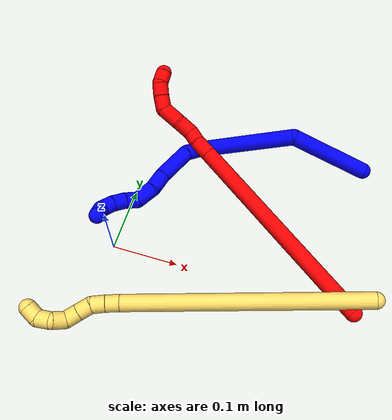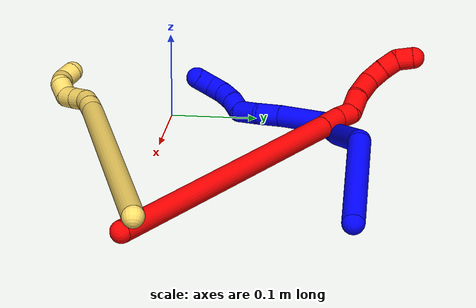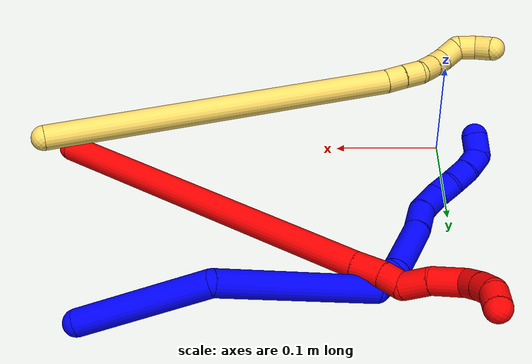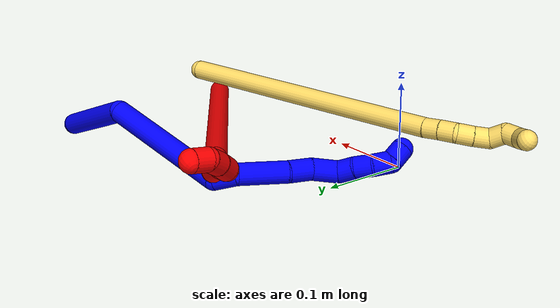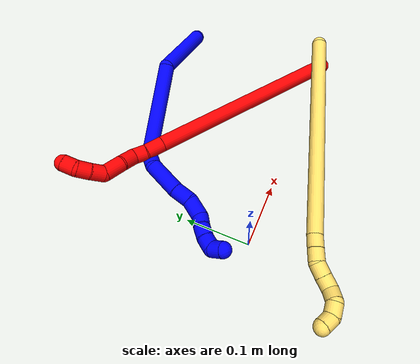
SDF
<sdf version="1.7">
 <world name="default">
  <model name="1">
   <static>0</static>
   <link name="1">
    <collision name="collision-cylinder-e_1_1_4">
     <pose>-0.056295 -0.003179 -0.028383 3.03003 -1.1013 -2.96021</pose>
     <geometry><cylinder><radius>0.0125</radius><length>0.12625</length></cylinder></geometry>
     <surface>
      <friction><ode><mu>1.16</mu><mu2>1.16</mu2><slip1>0</slip1><slip2>0</slip2></ode></friction>
      <contact><ode><kp>1e+06</kp><kd>1</kd><max_vel>0</max_vel><min_depth>0.001</min_depth></ode></contact>
     </surface>
    </collision>
    <visual name="visual-cylinder-e_1_1_4">
     <pose>-0.056295 -0.003179 -0.028383 3.03003 -1.1013 -2.96021</pose>
     <geometry><cylinder><radius>0.0125</radius><length>0.12625</length></cylinder></geometry>
     <material><ambient>0 0 1 1</ambient></material>
    </visual>
    <collision name="collision-cylinder-e_2_4_5">
     <pose>-0.146343 0.017499 -0.121267 -2.78732 -0.456263 1.82794</pose>
     <geometry><cylinder><radius>0.0125</radius><length>0.153219</length></cylinder></geometry>
     <surface>
      <friction><ode><mu>1.16</mu><mu2>1.16</mu2><slip1>0</slip1><slip2>0</slip2></ode></friction>
      <contact><ode><kp>1e+06</kp><kd>1</kd><max_vel>0</max_vel><min_depth>0.001</min_depth></ode></contact>
     </surface>
    </collision>
    <visual name="visual-cylinder-e_2_4_5">
     <pose>-0.146343 0.017499 -0.121267 -2.78732 -0.456263 1.82794</pose>
     <geometry><cylinder><radius>0.0125</radius><length>0.153219</length></cylinder></geometry>
     <material><ambient>0 0 1 1</ambient></material>
    </visual>
    <collision name="collision-cylinder-e_3_5_6">
     <pose>-0.185568 0.035415 -0.196338 2.62947 -0.423912 -1.37595</pose>
     <geometry><cylinder><radius>0.0125</radius><length>0.026604</length></cylinder></geometry>
     <surface>
      <friction><ode><mu>1.16</mu><mu2>1.16</mu2><slip1>0</slip1><slip2>0</slip2></ode></friction>
      <contact><ode><kp>1e+06</kp><kd>1</kd><max_vel>0</max_vel><min_depth>0.001</min_depth></ode></contact>
     </surface>
    </collision>
    <visual name="visual-cylinder-e_3_5_6">
     <pose>-0.185568 0.035415 -0.196338 2.62947 -0.423912 -1.37595</pose>
     <geometry><cylinder><radius>0.0125</radius><length>0.026604</length></cylinder></geometry>
     <material><ambient>0 0 1 1</ambient></material>
    </visual>
    <collision name="collision-cylinder-e_4_6_7">
     <pose>-0.189748 0.017066 -0.231739 2.6782 0.046511 0.196537</pose>
     <geometry><cylinder><radius>0.0125</radius><length>0.055578</length></cylinder></geometry>
     <surface>
      <friction><ode><mu>1.16</mu><mu2>1.16</mu2><slip1>0</slip1><slip2>0</slip2></ode></friction>
      <contact><ode><kp>1e+06</kp><kd>1</kd><max_vel>0</max_vel><min_depth>0.001</min_depth></ode></contact>
     </surface>
    </collision>
    <visual name="visual-cylinder-e_4_6_7">
     <pose>-0.189748 0.017066 -0.231739 2.6782 0.046511 0.196537</pose>
     <geometry><cylinder><radius>0.0125</radius><length>0.055578</length></cylinder></geometry>
     <material><ambient>0 0 1 1</ambient></material>
    </visual>
    <collision name="collision-cylinder-e_5_7_8">
     <pose>-0.185903 -0.002689 -0.268133 2.57554 0.184281 0.615253</pose>
     <geometry><cylinder><radius>0.0125</radius><length>0.02787</length></cylinder></geometry>
     <surface>
      <friction><ode><mu>1.16</mu><mu2>1.16</mu2><slip1>0</slip1><slip2>0</slip2></ode></friction>
      <contact><ode><kp>1e+06</kp><kd>1</kd><max_vel>0</max_vel><min_depth>0.001</min_depth></ode></contact>
     </surface>
    </collision>
    <visual name="visual-cylinder-e_5_7_8">
     <pose>-0.185903 -0.002689 -0.268133 2.57554 0.184281 0.615253</pose>
     <geometry><cylinder><radius>0.0125</radius><length>0.02787</length></cylinder></geometry>
     <material><ambient>0 0 1 1</ambient></material>
    </visual>
    <collision name="collision-cylinder-e_6_8_9">
     <pose>-0.183976 -0.014377 -0.294268 2.85207 -0.041217 -0.280913</pose>
     <geometry><cylinder><radius>0.0125</radius><length>0.030438</length></cylinder></geometry>
     <surface>
      <friction><ode><mu>1.16</mu><mu2>1.16</mu2><slip1>0</slip1><slip2>0</slip2></ode></friction>
      <contact><ode><kp>1e+06</kp><kd>1</kd><max_vel>0</max_vel><min_depth>0.001</min_depth></ode></contact>
     </surface>
    </collision>
    <visual name="visual-cylinder-e_6_8_9">
     <pose>-0.183976 -0.014377 -0.294268 2.85207 -0.041217 -0.280913</pose>
     <geometry><cylinder><radius>0.0125</radius><length>0.030438</length></cylinder></geometry>
     <material><ambient>0 0 1 1</ambient></material>
    </visual>
    <collision name="collision-cylinder-e_7_9_10">
     <pose>-0.190668 -0.022675 -0.315762 2.62217 -0.650338 -1.80665</pose>
     <geometry><cylinder><radius>0.0125</radius><length>0.020035</length></cylinder></geometry>
     <surface>
      <friction><ode><mu>1.16</mu><mu2>1.16</mu2><slip1>0</slip1><slip2>0</slip2></ode></friction>
      <contact><ode><kp>1e+06</kp><kd>1</kd><max_vel>0</max_vel><min_depth>0.001</min_depth></ode></contact>
     </surface>
    </collision>
    <visual name="visual-cylinder-e_7_9_10">
     <pose>-0.190668 -0.022675 -0.315762 2.62217 -0.650338 -1.80665</pose>
     <geometry><cylinder><radius>0.0125</radius><length>0.020035</length></cylinder></geometry>
     <material><ambient>0 0 1 1</ambient></material>
    </visual>
    <collision name="collision-cylinder-e_8_10_11">
     <pose>-0.201125 -0.030456 -0.330814 2.7021 -0.454577 -1.60569</pose>
     <geometry><cylinder><radius>0.0125</radius><length>0.020001</length></cylinder></geometry>
     <surface>
      <friction><ode><mu>1.16</mu><mu2>1.16</mu2><slip1>0</slip1><slip2>0</slip2></ode></friction>
      <contact><ode><kp>1e+06</kp><kd>1</kd><max_vel>0</max_vel><min_depth>0.001</min_depth></ode></contact>
     </surface>
    </collision>
    <visual name="visual-cylinder-e_8_10_11">
     <pose>-0.201125 -0.030456 -0.330814 2.7021 -0.454577 -1.60569</pose>
     <geometry><cylinder><radius>0.0125</radius><length>0.020001</length></cylinder></geometry>
     <material><ambient>0 0 1 1</ambient></material>
    </visual>
    <collision name="collision-cylinder-e_9_11_12">
     <pose>-0.208165 -0.039232 -0.347221 2.60229 -0.268078 -0.907838</pose>
     <geometry><cylinder><radius>0.0125</radius><length>0.020005</length></cylinder></geometry>
     <surface>
      <friction><ode><mu>1.16</mu><mu2>1.16</mu2><slip1>0</slip1><slip2>0</slip2></ode></friction>
      <contact><ode><kp>1e+06</kp><kd>1</kd><max_vel>0</max_vel><min_depth>0.001</min_depth></ode></contact>
     </surface>
    </collision>
    <visual name="visual-cylinder-e_9_11_12">
     <pose>-0.208165 -0.039232 -0.347221 2.60229 -0.268078 -0.907838</pose>
     <geometry><cylinder><radius>0.0125</radius><length>0.020005</length></cylinder></geometry>
     <material><ambient>0 0 1 1</ambient></material>
    </visual>
    <collision name="collision-cylinder-e_10_12_2">
     <pose>-0.209919 -0.053595 -0.358761 1.90461 0.089658 0.125907</pose>
     <geometry><cylinder><radius>0.0125</radius><length>0.02</length></cylinder></geometry>
     <surface>
      <friction><ode><mu>1.16</mu><mu2>1.16</mu2><slip1>0</slip1><slip2>0</slip2></ode></friction>
      <contact><ode><kp>1e+06</kp><kd>1</kd><max_vel>0</max_vel><min_depth>0.001</min_depth></ode></contact>
     </surface>
    </collision>
    <visual name="visual-cylinder-e_10_12_2">
     <pose>-0.209919 -0.053595 -0.358761 1.90461 0.089658 0.125907</pose>
     <geometry><cylinder><radius>0.0125</radius><length>0.02</length></cylinder></geometry>
     <material><ambient>0 0 1 1</ambient></material>
    </visual>
    <collision name="collision-sphere-2">
     <pose>-0.209024 -0.063006 -0.362025 0 -0 0</pose>
     <geometry><sphere><radius>0.0125</radius></sphere></geometry>
     <surface>
      <friction><ode><mu>1.16</mu><mu2>1.16</mu2><slip1>0</slip1><slip2>0</slip2></ode></friction>
      <contact><ode><kp>1e+06</kp><kd>1</kd><max_vel>0</max_vel><min_depth>0.001</min_depth></ode></contact>
     </surface>
    </collision>
    <visual name="visual-sphere-2">
     <pose>-0.209024 -0.063006 -0.362025 0 -0 0</pose>
     <geometry><sphere><radius>0.0125</radius></sphere></geometry>
     <material><ambient>0 0 1 1</ambient></material>
    </visual>
    <collision name="collision-sphere-12">
     <pose>-0.210815 -0.044185 -0.355498 0 -0 0</pose>
     <geometry><sphere><radius>0.0125</radius></sphere></geometry>
     <surface>
      <friction><ode><mu>1.16</mu><mu2>1.16</mu2><slip1>0</slip1><slip2>0</slip2></ode></friction>
      <contact><ode><kp>1e+06</kp><kd>1</kd><max_vel>0</max_vel><min_depth>0.001</min_depth></ode></contact>
     </surface>
    </collision>
    <visual name="visual-sphere-12">
     <pose>-0.210815 -0.044185 -0.355498 0 -0 0</pose>
     <geometry><sphere><radius>0.0125</radius></sphere></geometry>
     <material><ambient>0 0 1 1</ambient></material>
    </visual>
    <collision name="collision-sphere-11">
     <pose>-0.205516 -0.034279 -0.338945 0 -0 0</pose>
     <geometry><sphere><radius>0.0125</radius></sphere></geometry>
     <surface>
      <friction><ode><mu>1.16</mu><mu2>1.16</mu2><slip1>0</slip1><slip2>0</slip2></ode></friction>
      <contact><ode><kp>1e+06</kp><kd>1</kd><max_vel>0</max_vel><min_depth>0.001</min_depth></ode></contact>
     </surface>
    </collision>
    <visual name="visual-sphere-11">
     <pose>-0.205516 -0.034279 -0.338945 0 -0 0</pose>
     <geometry><sphere><radius>0.0125</radius></sphere></geometry>
     <material><ambient>0 0 1 1</ambient></material>
    </visual>
    <collision name="collision-sphere-10">
     <pose>-0.196734 -0.026633 -0.322683 0 -0 0</pose>
     <geometry><sphere><radius>0.0125</radius></sphere></geometry>
     <surface>
      <friction><ode><mu>1.16</mu><mu2>1.16</mu2><slip1>0</slip1><slip2>0</slip2></ode></friction>
      <contact><ode><kp>1e+06</kp><kd>1</kd><max_vel>0</max_vel><min_depth>0.001</min_depth></ode></contact>
     </surface>
    </collision>
    <visual name="visual-sphere-10">
     <pose>-0.196734 -0.026633 -0.322683 0 -0 0</pose>
     <geometry><sphere><radius>0.0125</radius></sphere></geometry>
     <material><ambient>0 0 1 1</ambient></material>
    </visual>
    <collision name="collision-sphere-9">
     <pose>-0.184603 -0.018718 -0.308841 0 -0 0</pose>
     <geometry><sphere><radius>0.0125</radius></sphere></geometry>
     <surface>
      <friction><ode><mu>1.16</mu><mu2>1.16</mu2><slip1>0</slip1><slip2>0</slip2></ode></friction>
      <contact><ode><kp>1e+06</kp><kd>1</kd><max_vel>0</max_vel><min_depth>0.001</min_depth></ode></contact>
     </surface>
    </collision>
    <visual name="visual-sphere-9">
     <pose>-0.184603 -0.018718 -0.308841 0 -0 0</pose>
     <geometry><sphere><radius>0.0125</radius></sphere></geometry>
     <material><ambient>0 0 1 1</ambient></material>
    </visual>
    <collision name="collision-sphere-4">
     <pose>-0.112589 -0.006359 -0.056765 0 -0 0</pose>
     <geometry><sphere><radius>0.0125</radius></sphere></geometry>
     <surface>
      <friction><ode><mu>1.16</mu><mu2>1.16</mu2><slip1>0</slip1><slip2>0</slip2></ode></friction>
      <contact><ode><kp>1e+06</kp><kd>1</kd><max_vel>0</max_vel><min_depth>0.001</min_depth></ode></contact>
     </surface>
    </collision>
    <visual name="visual-sphere-4">
     <pose>-0.112589 -0.006359 -0.056765 0 -0 0</pose>
     <geometry><sphere><radius>0.0125</radius></sphere></geometry>
     <material><ambient>0 0 1 1</ambient></material>
    </visual>
    <collision name="collision-sphere-1">
     <geometry><sphere><radius>0.0125</radius></sphere></geometry>
     <surface>
      <friction><ode><mu>1.16</mu><mu2>1.16</mu2><slip1>0</slip1><slip2>0</slip2></ode></friction>
      <contact><ode><kp>1e+06</kp><kd>1</kd><max_vel>0</max_vel><min_depth>0.001</min_depth></ode></contact>
     </surface>
    </collision>
    <visual name="visual-sphere-1">
     <geometry><sphere><radius>0.0125</radius></sphere></geometry>
     <material><ambient>0 0 1 1</ambient></material>
    </visual>
    <collision name="collision-sphere-8">
     <pose>-0.183349 -0.010035 -0.279695 0 -0 0</pose>
     <geometry><sphere><radius>0.0125</radius></sphere></geometry>
     <surface>
      <friction><ode><mu>1.16</mu><mu2>1.16</mu2><slip1>0</slip1><slip2>0</slip2></ode></friction>
      <contact><ode><kp>1e+06</kp><kd>1</kd><max_vel>0</max_vel><min_depth>0.001</min_depth></ode></contact>
     </surface>
    </collision>
    <visual name="visual-sphere-8">
     <pose>-0.183349 -0.010035 -0.279695 0 -0 0</pose>
     <geometry><sphere><radius>0.0125</radius></sphere></geometry>
     <material><ambient>0 0 1 1</ambient></material>
    </visual>
    <collision name="collision-sphere-5">
     <pose>-0.180097 0.041357 -0.185769 0 -0 0</pose>
     <geometry><sphere><radius>0.0125</radius></sphere></geometry>
     <surface>
      <friction><ode><mu>1.16</mu><mu2>1.16</mu2><slip1>0</slip1><slip2>0</slip2></ode></friction>
      <contact><ode><kp>1e+06</kp><kd>1</kd><max_vel>0</max_vel><min_depth>0.001</min_depth></ode></contact>
     </surface>
    </collision>
    <visual name="visual-sphere-5">
     <pose>-0.180097 0.041357 -0.185769 0 -0 0</pose>
     <geometry><sphere><radius>0.0125</radius></sphere></geometry>
     <material><ambient>0 0 1 1</ambient></material>
    </visual>
    <collision name="collision-sphere-6">
     <pose>-0.19104 0.029474 -0.206907 0 -0 0</pose>
     <geometry><sphere><radius>0.0125</radius></sphere></geometry>
     <surface>
      <friction><ode><mu>1.16</mu><mu2>1.16</mu2><slip1>0</slip1><slip2>0</slip2></ode></friction>
      <contact><ode><kp>1e+06</kp><kd>1</kd><max_vel>0</max_vel><min_depth>0.001</min_depth></ode></contact>
     </surface>
    </collision>
    <visual name="visual-sphere-6">
     <pose>-0.19104 0.029474 -0.206907 0 -0 0</pose>
     <geometry><sphere><radius>0.0125</radius></sphere></geometry>
     <material><ambient>0 0 1 1</ambient></material>
    </visual>
    <collision name="collision-sphere-7">
     <pose>-0.188456 0.004658 -0.256571 0 -0 0</pose>
     <geometry><sphere><radius>0.0125</radius></sphere></geometry>
     <surface>
      <friction><ode><mu>1.16</mu><mu2>1.16</mu2><slip1>0</slip1><slip2>0</slip2></ode></friction>
      <contact><ode><kp>1e+06</kp><kd>1</kd><max_vel>0</max_vel><min_depth>0.001</min_depth></ode></contact>
     </surface>
    </collision>
    <visual name="visual-sphere-7">
     <pose>-0.188456 0.004658 -0.256571 0 -0 0</pose>
     <geometry><sphere><radius>0.0125</radius></sphere></geometry>
     <material><ambient>0 0 1 1</ambient></material>
    </visual>
    <inertial>
     <pose>-0.143998 0.001475 -0.167522 0 -0 0</pose>
     <mass>0.5</mass>
     <inertia>
      <ixx>0.000111</ixx>
      <ixy>0</ixy>
      <ixz>0</ixz>
      <iyy>0.000515</iyy>
      <iyz>0</iyz>
      <izz>0.00019</izz>
     </inertia>
    </inertial>
   </link>
   <pose>0.334025 0.237598 0.011842 -1.08935 0.599085 -0.453098</pose>
  </model>
  <model name="2">
   <static>0</static>
   <link name="2">
    <collision name="collision-cylinder-e_1_1_4">
     <pose>-0.103328 0.045001 -0.120714 -2.78476 -0.675993 2.19351</pose>
     <geometry><cylinder><radius>0.0125</radius><length>0.330296</length></cylinder></geometry>
     <surface>
      <friction><ode><mu>1.16</mu><mu2>1.16</mu2><slip1>0</slip1><slip2>0</slip2></ode></friction>
      <contact><ode><kp>1e+06</kp><kd>1</kd><max_vel>0</max_vel><min_depth>0.001</min_depth></ode></contact>
     </surface>
    </collision>
    <visual name="visual-cylinder-e_1_1_4">
     <pose>-0.103328 0.045001 -0.120714 -2.78476 -0.675993 2.19351</pose>
     <geometry><cylinder><radius>0.0125</radius><length>0.330296</length></cylinder></geometry>
     <material><ambient>1 0 0 1</ambient></material>
    </visual>
    <collision name="collision-cylinder-e_2_4_5">
     <pose>-0.215742 0.0933 -0.251823 -2.83428 -0.694612 2.33301</pose>
     <geometry><cylinder><radius>0.0125</radius><length>0.028388</length></cylinder></geometry>
     <surface>
      <friction><ode><mu>1.16</mu><mu2>1.16</mu2><slip1>0</slip1><slip2>0</slip2></ode></friction>
      <contact><ode><kp>1e+06</kp><kd>1</kd><max_vel>0</max_vel><min_depth>0.001</min_depth></ode></contact>
     </surface>
    </collision>
    <visual name="visual-cylinder-e_2_4_5">
     <pose>-0.215742 0.0933 -0.251823 -2.83428 -0.694612 2.33301</pose>
     <geometry><cylinder><radius>0.0125</radius><length>0.028388</length></cylinder></geometry>
     <material><ambient>1 0 0 1</ambient></material>
    </visual>
    <collision name="collision-cylinder-e_3_5_6">
     <pose>-0.231455 0.100945 -0.269281 -2.59003 -0.674217 1.78308</pose>
     <geometry><cylinder><radius>0.0125</radius><length>0.021231</length></cylinder></geometry>
     <surface>
      <friction><ode><mu>1.16</mu><mu2>1.16</mu2><slip1>0</slip1><slip2>0</slip2></ode></friction>
      <contact><ode><kp>1e+06</kp><kd>1</kd><max_vel>0</max_vel><min_depth>0.001</min_depth></ode></contact>
     </surface>
    </collision>
    <visual name="visual-cylinder-e_3_5_6">
     <pose>-0.231455 0.100945 -0.269281 -2.59003 -0.674217 1.78308</pose>
     <geometry><cylinder><radius>0.0125</radius><length>0.021231</length></cylinder></geometry>
     <material><ambient>1 0 0 1</ambient></material>
    </visual>
    <collision name="collision-cylinder-e_4_6_7">
     <pose>-0.249355 0.102955 -0.283313 2.81826 -0.993016 -2.5568</pose>
     <geometry><cylinder><radius>0.0125</radius><length>0.026915</length></cylinder></geometry>
     <surface>
      <friction><ode><mu>1.16</mu><mu2>1.16</mu2><slip1>0</slip1><slip2>0</slip2></ode></friction>
      <contact><ode><kp>1e+06</kp><kd>1</kd><max_vel>0</max_vel><min_depth>0.001</min_depth></ode></contact>
     </surface>
    </collision>
    <visual name="visual-cylinder-e_4_6_7">
     <pose>-0.249355 0.102955 -0.283313 2.81826 -0.993016 -2.5568</pose>
     <geometry><cylinder><radius>0.0125</radius><length>0.026915</length></cylinder></geometry>
     <material><ambient>1 0 0 1</ambient></material>
    </visual>
    <collision name="collision-cylinder-e_5_7_8">
     <pose>-0.272357 0.100457 -0.300821 3.12614 -0.83873 -3.10694</pose>
     <geometry><cylinder><radius>0.0125</radius><length>0.031538</length></cylinder></geometry>
     <surface>
      <friction><ode><mu>1.16</mu><mu2>1.16</mu2><slip1>0</slip1><slip2>0</slip2></ode></friction>
      <contact><ode><kp>1e+06</kp><kd>1</kd><max_vel>0</max_vel><min_depth>0.001</min_depth></ode></contact>
     </surface>
    </collision>
    <visual name="visual-cylinder-e_5_7_8">
     <pose>-0.272357 0.100457 -0.300821 3.12614 -0.83873 -3.10694</pose>
     <geometry><cylinder><radius>0.0125</radius><length>0.031538</length></cylinder></geometry>
     <material><ambient>1 0 0 1</ambient></material>
    </visual>
    <collision name="collision-cylinder-e_6_8_9">
     <pose>-0.293923 0.104355 -0.312892 -1.93158 -1.15527 1.51168</pose>
     <geometry><cylinder><radius>0.0125</radius><length>0.021504</length></cylinder></geometry>
     <surface>
      <friction><ode><mu>1.16</mu><mu2>1.16</mu2><slip1>0</slip1><slip2>0</slip2></ode></friction>
      <contact><ode><kp>1e+06</kp><kd>1</kd><max_vel>0</max_vel><min_depth>0.001</min_depth></ode></contact>
     </surface>
    </collision>
    <visual name="visual-cylinder-e_6_8_9">
     <pose>-0.293923 0.104355 -0.312892 -1.93158 -1.15527 1.51168</pose>
     <geometry><cylinder><radius>0.0125</radius><length>0.021504</length></cylinder></geometry>
     <material><ambient>1 0 0 1</ambient></material>
    </visual>
    <collision name="collision-cylinder-e_7_9_10">
     <pose>-0.312451 0.11326 -0.315566 -1.80229 -1.05068 1.26403</pose>
     <geometry><cylinder><radius>0.0125</radius><length>0.020031</length></cylinder></geometry>
     <surface>
      <friction><ode><mu>1.16</mu><mu2>1.16</mu2><slip1>0</slip1><slip2>0</slip2></ode></friction>
      <contact><ode><kp>1e+06</kp><kd>1</kd><max_vel>0</max_vel><min_depth>0.001</min_depth></ode></contact>
     </surface>
    </collision>
    <visual name="visual-cylinder-e_7_9_10">
     <pose>-0.312451 0.11326 -0.315566 -1.80229 -1.05068 1.26403</pose>
     <geometry><cylinder><radius>0.0125</radius><length>0.020031</length></cylinder></geometry>
     <material><ambient>1 0 0 1</ambient></material>
    </visual>
    <collision name="collision-cylinder-e_8_10_2">
     <pose>-0.326342 0.126692 -0.317166 -1.62407 -0.543865 0.57208</pose>
     <geometry><cylinder><radius>0.0125</radius><length>0.020097</length></cylinder></geometry>
     <surface>
      <friction><ode><mu>1.16</mu><mu2>1.16</mu2><slip1>0</slip1><slip2>0</slip2></ode></friction>
      <contact><ode><kp>1e+06</kp><kd>1</kd><max_vel>0</max_vel><min_depth>0.001</min_depth></ode></contact>
     </surface>
    </collision>
    <visual name="visual-cylinder-e_8_10_2">
     <pose>-0.326342 0.126692 -0.317166 -1.62407 -0.543865 0.57208</pose>
     <geometry><cylinder><radius>0.0125</radius><length>0.020097</length></cylinder></geometry>
     <material><ambient>1 0 0 1</ambient></material>
    </visual>
    <collision name="collision-sphere-2">
     <pose>-0.331541 0.135278 -0.317624 0 -0 0</pose>
     <geometry><sphere><radius>0.0125</radius></sphere></geometry>
     <surface>
      <friction><ode><mu>1.16</mu><mu2>1.16</mu2><slip1>0</slip1><slip2>0</slip2></ode></friction>
      <contact><ode><kp>1e+06</kp><kd>1</kd><max_vel>0</max_vel><min_depth>0.001</min_depth></ode></contact>
     </surface>
    </collision>
    <visual name="visual-sphere-2">
     <pose>-0.331541 0.135278 -0.317624 0 -0 0</pose>
     <geometry><sphere><radius>0.0125</radius></sphere></geometry>
     <material><ambient>1 0 0 1</ambient></material>
    </visual>
    <collision name="collision-sphere-10">
     <pose>-0.321142 0.118105 -0.316708 0 -0 0</pose>
     <geometry><sphere><radius>0.0125</radius></sphere></geometry>
     <surface>
      <friction><ode><mu>1.16</mu><mu2>1.16</mu2><slip1>0</slip1><slip2>0</slip2></ode></friction>
      <contact><ode><kp>1e+06</kp><kd>1</kd><max_vel>0</max_vel><min_depth>0.001</min_depth></ode></contact>
     </surface>
    </collision>
    <visual name="visual-sphere-10">
     <pose>-0.321142 0.118105 -0.316708 0 -0 0</pose>
     <geometry><sphere><radius>0.0125</radius></sphere></geometry>
     <material><ambient>1 0 0 1</ambient></material>
    </visual>
    <collision name="collision-sphere-9">
     <pose>-0.30376 0.108416 -0.314424 0 -0 0</pose>
     <geometry><sphere><radius>0.0125</radius></sphere></geometry>
     <surface>
      <friction><ode><mu>1.16</mu><mu2>1.16</mu2><slip1>0</slip1><slip2>0</slip2></ode></friction>
      <contact><ode><kp>1e+06</kp><kd>1</kd><max_vel>0</max_vel><min_depth>0.001</min_depth></ode></contact>
     </surface>
    </collision>
    <visual name="visual-sphere-9">
     <pose>-0.30376 0.108416 -0.314424 0 -0 0</pose>
     <geometry><sphere><radius>0.0125</radius></sphere></geometry>
     <material><ambient>1 0 0 1</ambient></material>
    </visual>
    <collision name="collision-sphere-4">
     <pose>-0.206657 0.090001 -0.241429 0 -0 0</pose>
     <geometry><sphere><radius>0.0125</radius></sphere></geometry>
     <surface>
      <friction><ode><mu>1.16</mu><mu2>1.16</mu2><slip1>0</slip1><slip2>0</slip2></ode></friction>
      <contact><ode><kp>1e+06</kp><kd>1</kd><max_vel>0</max_vel><min_depth>0.001</min_depth></ode></contact>
     </surface>
    </collision>
    <visual name="visual-sphere-4">
     <pose>-0.206657 0.090001 -0.241429 0 -0 0</pose>
     <geometry><sphere><radius>0.0125</radius></sphere></geometry>
     <material><ambient>1 0 0 1</ambient></material>
    </visual>
    <collision name="collision-sphere-1">
     <geometry><sphere><radius>0.0125</radius></sphere></geometry>
     <surface>
      <friction><ode><mu>1.16</mu><mu2>1.16</mu2><slip1>0</slip1><slip2>0</slip2></ode></friction>
      <contact><ode><kp>1e+06</kp><kd>1</kd><max_vel>0</max_vel><min_depth>0.001</min_depth></ode></contact>
     </surface>
    </collision>
    <visual name="visual-sphere-1">
     <geometry><sphere><radius>0.0125</radius></sphere></geometry>
     <material><ambient>1 0 0 1</ambient></material>
    </visual>
    <collision name="collision-sphere-8">
     <pose>-0.284086 0.100294 -0.31136 0 -0 0</pose>
     <geometry><sphere><radius>0.0125</radius></sphere></geometry>
     <surface>
      <friction><ode><mu>1.16</mu><mu2>1.16</mu2><slip1>0</slip1><slip2>0</slip2></ode></friction>
      <contact><ode><kp>1e+06</kp><kd>1</kd><max_vel>0</max_vel><min_depth>0.001</min_depth></ode></contact>
     </surface>
    </collision>
    <visual name="visual-sphere-8">
     <pose>-0.284086 0.100294 -0.31136 0 -0 0</pose>
     <geometry><sphere><radius>0.0125</radius></sphere></geometry>
     <material><ambient>1 0 0 1</ambient></material>
    </visual>
    <collision name="collision-sphere-5">
     <pose>-0.224828 0.096599 -0.262218 0 -0 0</pose>
     <geometry><sphere><radius>0.0125</radius></sphere></geometry>
     <surface>
      <friction><ode><mu>1.16</mu><mu2>1.16</mu2><slip1>0</slip1><slip2>0</slip2></ode></friction>
      <contact><ode><kp>1e+06</kp><kd>1</kd><max_vel>0</max_vel><min_depth>0.001</min_depth></ode></contact>
     </surface>
    </collision>
    <visual name="visual-sphere-5">
     <pose>-0.224828 0.096599 -0.262218 0 -0 0</pose>
     <geometry><sphere><radius>0.0125</radius></sphere></geometry>
     <material><ambient>1 0 0 1</ambient></material>
    </visual>
    <collision name="collision-sphere-6">
     <pose>-0.238082 0.10529 -0.276344 0 -0 0</pose>
     <geometry><sphere><radius>0.0125</radius></sphere></geometry>
     <surface>
      <friction><ode><mu>1.16</mu><mu2>1.16</mu2><slip1>0</slip1><slip2>0</slip2></ode></friction>
      <contact><ode><kp>1e+06</kp><kd>1</kd><max_vel>0</max_vel><min_depth>0.001</min_depth></ode></contact>
     </surface>
    </collision>
    <visual name="visual-sphere-6">
     <pose>-0.238082 0.10529 -0.276344 0 -0 0</pose>
     <geometry><sphere><radius>0.0125</radius></sphere></geometry>
     <material><ambient>1 0 0 1</ambient></material>
    </visual>
    <collision name="collision-sphere-7">
     <pose>-0.260628 0.10062 -0.290282 0 -0 0</pose>
     <geometry><sphere><radius>0.0125</radius></sphere></geometry>
     <surface>
      <friction><ode><mu>1.16</mu><mu2>1.16</mu2><slip1>0</slip1><slip2>0</slip2></ode></friction>
      <contact><ode><kp>1e+06</kp><kd>1</kd><max_vel>0</max_vel><min_depth>0.001</min_depth></ode></contact>
     </surface>
    </collision>
    <visual name="visual-sphere-7">
     <pose>-0.260628 0.10062 -0.290282 0 -0 0</pose>
     <geometry><sphere><radius>0.0125</radius></sphere></geometry>
     <material><ambient>1 0 0 1</ambient></material>
    </visual>
    <inertial>
     <pose>-0.159212 0.065307 -0.178547 0 -0 0</pose>
     <mass>0.5</mass>
     <inertia>
      <ixx>0.000513</ixx>
      <ixy>0</ixy>
      <ixz>0</ixz>
      <iyy>0.004121</iyy>
      <iyz>0</iyz>
      <izz>0.001048</izz>
     </inertia>
    </inertial>
   </link>
   <pose>0.365296 0.000187 0.003612 -0.536208 0.958757 -0.740402</pose>
  </model>
  <model name="5">
   <static>0</static>
   <link name="5">
    <collision name="collision-cylinder-e_1_1_4">
     <pose>-0.024477 -0.125871 -0.125132 2.35325 -0.137045 -0.327051</pose>
     <geometry><cylinder><radius>0.0125</radius><length>0.358333</length></cylinder></geometry>
     <surface>
      <friction><ode><mu>1.16</mu><mu2>1.16</mu2><slip1>0</slip1><slip2>0</slip2></ode></friction>
      <contact><ode><kp>1e+06</kp><kd>1</kd><max_vel>0</max_vel><min_depth>0.001</min_depth></ode></contact>
     </surface>
    </collision>
    <visual name="visual-cylinder-e_1_1_4">
     <pose>-0.024477 -0.125871 -0.125132 2.35325 -0.137045 -0.327051</pose>
     <geometry><cylinder><radius>0.0125</radius><length>0.358333</length></cylinder></geometry>
     <material><ambient>1 0.858824 0.4 1</ambient></material>
    </visual>
    <collision name="collision-cylinder-e_2_4_5">
     <pose>-0.051009 -0.258206 -0.257708 2.42671 -0.20554 -0.538851</pose>
     <geometry><cylinder><radius>0.0125</radius><length>0.020142</length></cylinder></geometry>
     <surface>
      <friction><ode><mu>1.16</mu><mu2>1.16</mu2><slip1>0</slip1><slip2>0</slip2></ode></friction>
      <contact><ode><kp>1e+06</kp><kd>1</kd><max_vel>0</max_vel><min_depth>0.001</min_depth></ode></contact>
     </surface>
    </collision>
    <visual name="visual-cylinder-e_2_4_5">
     <pose>-0.051009 -0.258206 -0.257708 2.42671 -0.20554 -0.538851</pose>
     <geometry><cylinder><radius>0.0125</radius><length>0.020142</length></cylinder></geometry>
     <material><ambient>1 0.858824 0.4 1</ambient></material>
    </visual>
    <collision name="collision-cylinder-e_3_5_6">
     <pose>-0.05544 -0.271581 -0.272237 2.36838 -0.235474 -0.565547</pose>
     <geometry><cylinder><radius>0.0125</radius><length>0.020357</length></cylinder></geometry>
     <surface>
      <friction><ode><mu>1.16</mu><mu2>1.16</mu2><slip1>0</slip1><slip2>0</slip2></ode></friction>
      <contact><ode><kp>1e+06</kp><kd>1</kd><max_vel>0</max_vel><min_depth>0.001</min_depth></ode></contact>
     </surface>
    </collision>
    <visual name="visual-cylinder-e_3_5_6">
     <pose>-0.05544 -0.271581 -0.272237 2.36838 -0.235474 -0.565547</pose>
     <geometry><cylinder><radius>0.0125</radius><length>0.020357</length></cylinder></geometry>
     <material><ambient>1 0.858824 0.4 1</ambient></material>
    </visual>
    <collision name="collision-cylinder-e_4_6_7">
     <pose>-0.063789 -0.285289 -0.283862 2.16005 -0.631195 -1.09695</pose>
     <geometry><cylinder><radius>0.0125</radius><length>0.020249</length></cylinder></geometry>
     <surface>
      <friction><ode><mu>1.16</mu><mu2>1.16</mu2><slip1>0</slip1><slip2>0</slip2></ode></friction>
      <contact><ode><kp>1e+06</kp><kd>1</kd><max_vel>0</max_vel><min_depth>0.001</min_depth></ode></contact>
     </surface>
    </collision>
    <visual name="visual-cylinder-e_4_6_7">
     <pose>-0.063789 -0.285289 -0.283862 2.16005 -0.631195 -1.09695</pose>
     <geometry><cylinder><radius>0.0125</radius><length>0.020249</length></cylinder></geometry>
     <material><ambient>1 0.858824 0.4 1</ambient></material>
    </visual>
    <collision name="collision-cylinder-e_5_7_8">
     <pose>-0.076019 -0.298388 -0.293084 2.20929 -0.672813 -1.21479</pose>
     <geometry><cylinder><radius>0.0125</radius><length>0.020076</length></cylinder></geometry>
     <surface>
      <friction><ode><mu>1.16</mu><mu2>1.16</mu2><slip1>0</slip1><slip2>0</slip2></ode></friction>
      <contact><ode><kp>1e+06</kp><kd>1</kd><max_vel>0</max_vel><min_depth>0.001</min_depth></ode></contact>
     </surface>
    </collision>
    <visual name="visual-cylinder-e_5_7_8">
     <pose>-0.076019 -0.298388 -0.293084 2.20929 -0.672813 -1.21479</pose>
     <geometry><cylinder><radius>0.0125</radius><length>0.020076</length></cylinder></geometry>
     <material><ambient>1 0.858824 0.4 1</ambient></material>
    </visual>
    <collision name="collision-cylinder-e_6_8_9">
     <pose>-0.085848 -0.307212 -0.307069 2.8771 -0.354952 -1.86532</pose>
     <geometry><cylinder><radius>0.0125</radius><length>0.020566</length></cylinder></geometry>
     <surface>
      <friction><ode><mu>1.16</mu><mu2>1.16</mu2><slip1>0</slip1><slip2>0</slip2></ode></friction>
      <contact><ode><kp>1e+06</kp><kd>1</kd><max_vel>0</max_vel><min_depth>0.001</min_depth></ode></contact>
     </surface>
    </collision>
    <visual name="visual-cylinder-e_6_8_9">
     <pose>-0.085848 -0.307212 -0.307069 2.8771 -0.354952 -1.86532</pose>
     <geometry><cylinder><radius>0.0125</radius><length>0.020566</length></cylinder></geometry>
     <material><ambient>1 0.858824 0.4 1</ambient></material>
    </visual>
    <collision name="collision-cylinder-e_7_9_10">
     <pose>-0.088854 -0.316944 -0.323342 2.33895 0.056617 0.133258</pose>
     <geometry><cylinder><radius>0.0125</radius><length>0.020085</length></cylinder></geometry>
     <surface>
      <friction><ode><mu>1.16</mu><mu2>1.16</mu2><slip1>0</slip1><slip2>0</slip2></ode></friction>
      <contact><ode><kp>1e+06</kp><kd>1</kd><max_vel>0</max_vel><min_depth>0.001</min_depth></ode></contact>
     </surface>
    </collision>
    <visual name="visual-cylinder-e_7_9_10">
     <pose>-0.088854 -0.316944 -0.323342 2.33895 0.056617 0.133258</pose>
     <geometry><cylinder><radius>0.0125</radius><length>0.020085</length></cylinder></geometry>
     <material><ambient>1 0.858824 0.4 1</ambient></material>
    </visual>
    <collision name="collision-cylinder-e_8_10_2">
     <pose>-0.082622 -0.327557 -0.337943 2.72245 0.595487 1.9294</pose>
     <geometry><cylinder><radius>0.0125</radius><length>0.020193</length></cylinder></geometry>
     <surface>
      <friction><ode><mu>1.16</mu><mu2>1.16</mu2><slip1>0</slip1><slip2>0</slip2></ode></friction>
      <contact><ode><kp>1e+06</kp><kd>1</kd><max_vel>0</max_vel><min_depth>0.001</min_depth></ode></contact>
     </surface>
    </collision>
    <visual name="visual-cylinder-e_8_10_2">
     <pose>-0.082622 -0.327557 -0.337943 2.72245 0.595487 1.9294</pose>
     <geometry><cylinder><radius>0.0125</radius><length>0.020193</length></cylinder></geometry>
     <material><ambient>1 0.858824 0.4 1</ambient></material>
    </visual>
    <collision name="collision-sphere-2">
     <pose>-0.076959 -0.330959 -0.345579 0 -0 0</pose>
     <geometry><sphere><radius>0.0125</radius></sphere></geometry>
     <surface>
      <friction><ode><mu>1.16</mu><mu2>1.16</mu2><slip1>0</slip1><slip2>0</slip2></ode></friction>
      <contact><ode><kp>1e+06</kp><kd>1</kd><max_vel>0</max_vel><min_depth>0.001</min_depth></ode></contact>
     </surface>
    </collision>
    <visual name="visual-sphere-2">
     <pose>-0.076959 -0.330959 -0.345579 0 -0 0</pose>
     <geometry><sphere><radius>0.0125</radius></sphere></geometry>
     <material><ambient>1 0.858824 0.4 1</ambient></material>
    </visual>
    <collision name="collision-sphere-10">
     <pose>-0.088285 -0.324155 -0.330308 0 -0 0</pose>
     <geometry><sphere><radius>0.0125</radius></sphere></geometry>
     <surface>
      <friction><ode><mu>1.16</mu><mu2>1.16</mu2><slip1>0</slip1><slip2>0</slip2></ode></friction>
      <contact><ode><kp>1e+06</kp><kd>1</kd><max_vel>0</max_vel><min_depth>0.001</min_depth></ode></contact>
     </surface>
    </collision>
    <visual name="visual-sphere-10">
     <pose>-0.088285 -0.324155 -0.330308 0 -0 0</pose>
     <geometry><sphere><radius>0.0125</radius></sphere></geometry>
     <material><ambient>1 0.858824 0.4 1</ambient></material>
    </visual>
    <collision name="collision-sphere-9">
     <pose>-0.089422 -0.309733 -0.316375 0 -0 0</pose>
     <geometry><sphere><radius>0.0125</radius></sphere></geometry>
     <surface>
      <friction><ode><mu>1.16</mu><mu2>1.16</mu2><slip1>0</slip1><slip2>0</slip2></ode></friction>
      <contact><ode><kp>1e+06</kp><kd>1</kd><max_vel>0</max_vel><min_depth>0.001</min_depth></ode></contact>
     </surface>
    </collision>
    <visual name="visual-sphere-9">
     <pose>-0.089422 -0.309733 -0.316375 0 -0 0</pose>
     <geometry><sphere><radius>0.0125</radius></sphere></geometry>
     <material><ambient>1 0.858824 0.4 1</ambient></material>
    </visual>
    <collision name="collision-sphere-4">
     <pose>-0.048954 -0.251743 -0.250263 0 -0 0</pose>
     <geometry><sphere><radius>0.0125</radius></sphere></geometry>
     <surface>
      <friction><ode><mu>1.16</mu><mu2>1.16</mu2><slip1>0</slip1><slip2>0</slip2></ode></friction>
      <contact><ode><kp>1e+06</kp><kd>1</kd><max_vel>0</max_vel><min_depth>0.001</min_depth></ode></contact>
     </surface>
    </collision>
    <visual name="visual-sphere-4">
     <pose>-0.048954 -0.251743 -0.250263 0 -0 0</pose>
     <geometry><sphere><radius>0.0125</radius></sphere></geometry>
     <material><ambient>1 0.858824 0.4 1</ambient></material>
    </visual>
    <collision name="collision-sphere-1">
     <geometry><sphere><radius>0.0125</radius></sphere></geometry>
     <surface>
      <friction><ode><mu>1.16</mu><mu2>1.16</mu2><slip1>0</slip1><slip2>0</slip2></ode></friction>
      <contact><ode><kp>1e+06</kp><kd>1</kd><max_vel>0</max_vel><min_depth>0.001</min_depth></ode></contact>
     </surface>
    </collision>
    <visual name="visual-sphere-1">
     <geometry><sphere><radius>0.0125</radius></sphere></geometry>
     <material><ambient>1 0.858824 0.4 1</ambient></material>
    </visual>
    <collision name="collision-sphere-8">
     <pose>-0.082274 -0.304692 -0.297762 0 -0 0</pose>
     <geometry><sphere><radius>0.0125</radius></sphere></geometry>
     <surface>
      <friction><ode><mu>1.16</mu><mu2>1.16</mu2><slip1>0</slip1><slip2>0</slip2></ode></friction>
      <contact><ode><kp>1e+06</kp><kd>1</kd><max_vel>0</max_vel><min_depth>0.001</min_depth></ode></contact>
     </surface>
    </collision>
    <visual name="visual-sphere-8">
     <pose>-0.082274 -0.304692 -0.297762 0 -0 0</pose>
     <geometry><sphere><radius>0.0125</radius></sphere></geometry>
     <material><ambient>1 0.858824 0.4 1</ambient></material>
    </visual>
    <collision name="collision-sphere-5">
     <pose>-0.053065 -0.264668 -0.265153 0 -0 0</pose>
     <geometry><sphere><radius>0.0125</radius></sphere></geometry>
     <surface>
      <friction><ode><mu>1.16</mu><mu2>1.16</mu2><slip1>0</slip1><slip2>0</slip2></ode></friction>
      <contact><ode><kp>1e+06</kp><kd>1</kd><max_vel>0</max_vel><min_depth>0.001</min_depth></ode></contact>
     </surface>
    </collision>
    <visual name="visual-sphere-5">
     <pose>-0.053065 -0.264668 -0.265153 0 -0 0</pose>
     <geometry><sphere><radius>0.0125</radius></sphere></geometry>
     <material><ambient>1 0.858824 0.4 1</ambient></material>
    </visual>
    <collision name="collision-sphere-6">
     <pose>-0.057814 -0.278494 -0.27932 0 -0 0</pose>
     <geometry><sphere><radius>0.0125</radius></sphere></geometry>
     <surface>
      <friction><ode><mu>1.16</mu><mu2>1.16</mu2><slip1>0</slip1><slip2>0</slip2></ode></friction>
      <contact><ode><kp>1e+06</kp><kd>1</kd><max_vel>0</max_vel><min_depth>0.001</min_depth></ode></contact>
     </surface>
    </collision>
    <visual name="visual-sphere-6">
     <pose>-0.057814 -0.278494 -0.27932 0 -0 0</pose>
     <geometry><sphere><radius>0.0125</radius></sphere></geometry>
     <material><ambient>1 0.858824 0.4 1</ambient></material>
    </visual>
    <collision name="collision-sphere-7">
     <pose>-0.069763 -0.292084 -0.288405 0 -0 0</pose>
     <geometry><sphere><radius>0.0125</radius></sphere></geometry>
     <surface>
      <friction><ode><mu>1.16</mu><mu2>1.16</mu2><slip1>0</slip1><slip2>0</slip2></ode></friction>
      <contact><ode><kp>1e+06</kp><kd>1</kd><max_vel>0</max_vel><min_depth>0.001</min_depth></ode></contact>
     </surface>
    </collision>
    <visual name="visual-sphere-7">
     <pose>-0.069763 -0.292084 -0.288405 0 -0 0</pose>
     <geometry><sphere><radius>0.0125</radius></sphere></geometry>
     <material><ambient>1 0.858824 0.4 1</ambient></material>
    </visual>
    <inertial>
     <pose>-0.037927 -0.173797 -0.173673 0 -0 0</pose>
     <mass>0.5</mass>
     <inertia>
      <ixx>0.00238</ixx>
      <ixy>0</ixy>
      <ixz>0</ixz>
      <iyy>-0.003704</iyy>
      <iyz>0</iyz>
      <izz>0.00321</izz>
     </inertia>
    </inertial>
   </link>
   <pose>0.388507 0.01652 0.031006 2.3133 0.047003 1.72393</pose>
  </model>
 </world>
</sdf>
